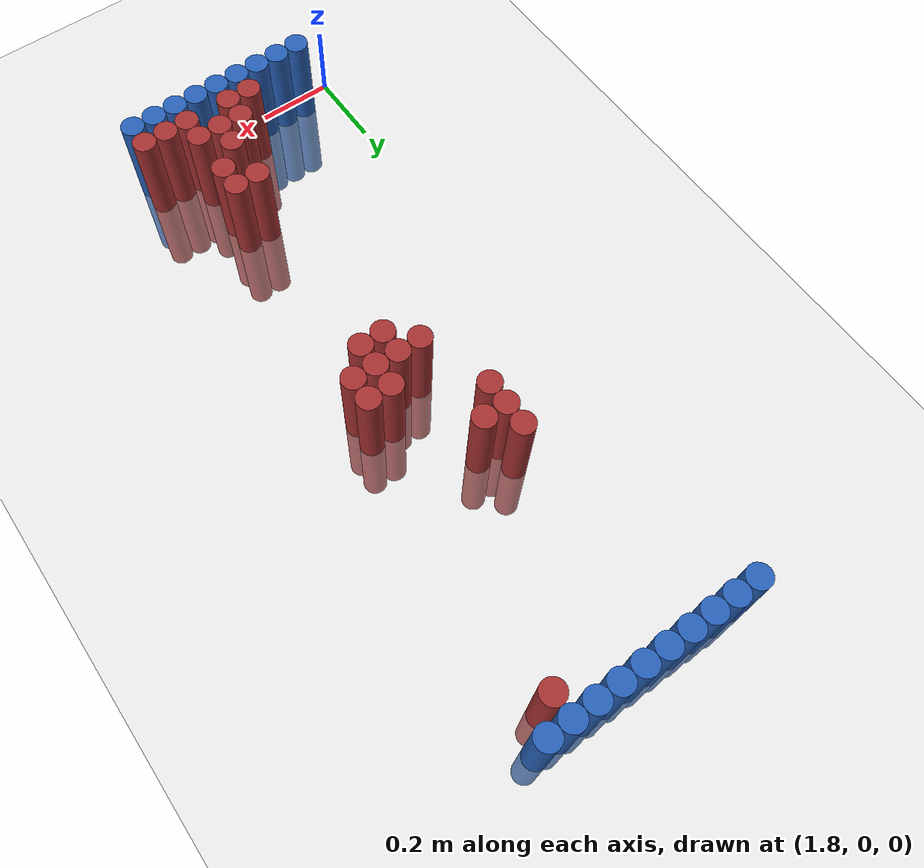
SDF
<sdf version="1.6">
 <world name="default">
  <model name="ground_plane">
   <static>1</static>
   <link name="link">
    <collision name="collision">
     <geometry><plane><normal>0 0 1</normal><size>100 100</size></plane></geometry>
     <surface><friction><ode><mu>100</mu><mu2>50</mu2></ode></friction></surface>
    </collision>
    <visual name="visual">
     <cast_shadows>0</cast_shadows>
     <geometry><plane><normal>0 0 1</normal><size>100 100</size></plane></geometry>
     <material>
      <script><uri>file://media/materials/scripts/gazebo.material</uri><name>Gazebo/Grey</name></script>
     </material>
    </visual>
   </link>
  </model>
  <model name="unit_cylinder_89">
   <static>1</static>
   <pose>1.890000 0.030000 0.000000 0.000000 0.000000 0.000000</pose>
   <link name="link">
    <inertial>
     <mass>1</mass>
     <inertia><ixx>0.145833</ixx><ixy>0</ixy><ixz>0</ixz><iyy>0.145833</iyy><iyz>0</iyz><izz>0.125</izz></inertia>
    </inertial>
    <collision name="collision">
     <geometry><cylinder><radius>0.030000</radius><length>0.5</length></cylinder></geometry>
    </collision>
    <visual name="visual">
     <geometry><cylinder><radius>0.030000</radius><length>0.5</length></cylinder></geometry>
     <material>
      <ambient>0.152000 0.379000 0.720000 1</ambient>
      <diffuse>0.152000 0.379000 0.720000 1</diffuse>
     </material>
     <material>
      <script><name>Gazebo/Grey</name><uri>file://media/materials/scripts/gazebo.material</uri></script>
     </material>
    </visual>
   </link>
  </model>
  <model name="unit_cylinder_90">
   <static>1</static>
   <pose>1.890000 1.770000 0.000000 0.000000 0.000000 0.000000</pose>
   <link name="link">
    <inertial>
     <mass>1</mass>
     <inertia><ixx>0.145833</ixx><ixy>0</ixy><ixz>0</ixz><iyy>0.145833</iyy><iyz>0</iyz><izz>0.125</izz></inertia>
    </inertial>
    <collision name="collision">
     <geometry><cylinder><radius>0.030000</radius><length>0.5</length></cylinder></geometry>
    </collision>
    <visual name="visual">
     <geometry><cylinder><radius>0.030000</radius><length>0.5</length></cylinder></geometry>
     <material>
      <ambient>0.152000 0.379000 0.720000 1</ambient>
      <diffuse>0.152000 0.379000 0.720000 1</diffuse>
     </material>
     <material>
      <script><name>Gazebo/Grey</name><uri>file://media/materials/scripts/gazebo.material</uri></script>
     </material>
    </visual>
   </link>
  </model>
  <model name="unit_cylinder_91">
   <static>1</static>
   <pose>1.950000 0.030000 0.000000 0.000000 0.000000 0.000000</pose>
   <link name="link">
    <inertial>
     <mass>1</mass>
     <inertia><ixx>0.145833</ixx><ixy>0</ixy><ixz>0</ixz><iyy>0.145833</iyy><iyz>0</iyz><izz>0.125</izz></inertia>
    </inertial>
    <collision name="collision">
     <geometry><cylinder><radius>0.030000</radius><length>0.5</length></cylinder></geometry>
    </collision>
    <visual name="visual">
     <geometry><cylinder><radius>0.030000</radius><length>0.5</length></cylinder></geometry>
     <material>
      <ambient>0.152000 0.379000 0.720000 1</ambient>
      <diffuse>0.152000 0.379000 0.720000 1</diffuse>
     </material>
     <material>
      <script><name>Gazebo/Grey</name><uri>file://media/materials/scripts/gazebo.material</uri></script>
     </material>
    </visual>
   </link>
  </model>
  <model name="unit_cylinder_92">
   <static>1</static>
   <pose>1.950000 1.770000 0.000000 0.000000 0.000000 0.000000</pose>
   <link name="link">
    <inertial>
     <mass>1</mass>
     <inertia><ixx>0.145833</ixx><ixy>0</ixy><ixz>0</ixz><iyy>0.145833</iyy><iyz>0</iyz><izz>0.125</izz></inertia>
    </inertial>
    <collision name="collision">
     <geometry><cylinder><radius>0.030000</radius><length>0.5</length></cylinder></geometry>
    </collision>
    <visual name="visual">
     <geometry><cylinder><radius>0.030000</radius><length>0.5</length></cylinder></geometry>
     <material>
      <ambient>0.152000 0.379000 0.720000 1</ambient>
      <diffuse>0.152000 0.379000 0.720000 1</diffuse>
     </material>
     <material>
      <script><name>Gazebo/Grey</name><uri>file://media/materials/scripts/gazebo.material</uri></script>
     </material>
    </visual>
   </link>
  </model>
  <model name="unit_cylinder_93">
   <static>1</static>
   <pose>2.010000 0.030000 0.000000 0.000000 0.000000 0.000000</pose>
   <link name="link">
    <inertial>
     <mass>1</mass>
     <inertia><ixx>0.145833</ixx><ixy>0</ixy><ixz>0</ixz><iyy>0.145833</iyy><iyz>0</iyz><izz>0.125</izz></inertia>
    </inertial>
    <collision name="collision">
     <geometry><cylinder><radius>0.030000</radius><length>0.5</length></cylinder></geometry>
    </collision>
    <visual name="visual">
     <geometry><cylinder><radius>0.030000</radius><length>0.5</length></cylinder></geometry>
     <material>
      <ambient>0.152000 0.379000 0.720000 1</ambient>
      <diffuse>0.152000 0.379000 0.720000 1</diffuse>
     </material>
     <material>
      <script><name>Gazebo/Grey</name><uri>file://media/materials/scripts/gazebo.material</uri></script>
     </material>
    </visual>
   </link>
  </model>
  <model name="unit_cylinder_94">
   <static>1</static>
   <pose>2.010000 1.770000 0.000000 0.000000 0.000000 0.000000</pose>
   <link name="link">
    <inertial>
     <mass>1</mass>
     <inertia><ixx>0.145833</ixx><ixy>0</ixy><ixz>0</ixz><iyy>0.145833</iyy><iyz>0</iyz><izz>0.125</izz></inertia>
    </inertial>
    <collision name="collision">
     <geometry><cylinder><radius>0.030000</radius><length>0.5</length></cylinder></geometry>
    </collision>
    <visual name="visual">
     <geometry><cylinder><radius>0.030000</radius><length>0.5</length></cylinder></geometry>
     <material>
      <ambient>0.152000 0.379000 0.720000 1</ambient>
      <diffuse>0.152000 0.379000 0.720000 1</diffuse>
     </material>
     <material>
      <script><name>Gazebo/Grey</name><uri>file://media/materials/scripts/gazebo.material</uri></script>
     </material>
    </visual>
   </link>
  </model>
  <model name="unit_cylinder_95">
   <static>1</static>
   <pose>2.070000 1.770000 0.000000 0.000000 0.000000 0.000000</pose>
   <link name="link">
    <inertial>
     <mass>1</mass>
     <inertia><ixx>0.145833</ixx><ixy>0</ixy><ixz>0</ixz><iyy>0.145833</iyy><iyz>0</iyz><izz>0.125</izz></inertia>
    </inertial>
    <collision name="collision">
     <geometry><cylinder><radius>0.030000</radius><length>0.5</length></cylinder></geometry>
    </collision>
    <visual name="visual">
     <geometry><cylinder><radius>0.030000</radius><length>0.5</length></cylinder></geometry>
     <material>
      <ambient>0.152000 0.379000 0.720000 1</ambient>
      <diffuse>0.152000 0.379000 0.720000 1</diffuse>
     </material>
     <material>
      <script><name>Gazebo/Grey</name><uri>file://media/materials/scripts/gazebo.material</uri></script>
     </material>
    </visual>
   </link>
  </model>
  <model name="unit_cylinder_96">
   <static>1</static>
   <pose>2.130000 1.770000 0.000000 0.000000 0.000000 0.000000</pose>
   <link name="link">
    <inertial>
     <mass>1</mass>
     <inertia><ixx>0.145833</ixx><ixy>0</ixy><ixz>0</ixz><iyy>0.145833</iyy><iyz>0</iyz><izz>0.125</izz></inertia>
    </inertial>
    <collision name="collision">
     <geometry><cylinder><radius>0.030000</radius><length>0.5</length></cylinder></geometry>
    </collision>
    <visual name="visual">
     <geometry><cylinder><radius>0.030000</radius><length>0.5</length></cylinder></geometry>
     <material>
      <ambient>0.152000 0.379000 0.720000 1</ambient>
      <diffuse>0.152000 0.379000 0.720000 1</diffuse>
     </material>
     <material>
      <script><name>Gazebo/Grey</name><uri>file://media/materials/scripts/gazebo.material</uri></script>
     </material>
    </visual>
   </link>
  </model>
  <model name="unit_cylinder_97">
   <static>1</static>
   <pose>2.190000 1.770000 0.000000 0.000000 0.000000 0.000000</pose>
   <link name="link">
    <inertial>
     <mass>1</mass>
     <inertia><ixx>0.145833</ixx><ixy>0</ixy><ixz>0</ixz><iyy>0.145833</iyy><iyz>0</iyz><izz>0.125</izz></inertia>
    </inertial>
    <collision name="collision">
     <geometry><cylinder><radius>0.030000</radius><length>0.5</length></cylinder></geometry>
    </collision>
    <visual name="visual">
     <geometry><cylinder><radius>0.030000</radius><length>0.5</length></cylinder></geometry>
     <material>
      <ambient>0.152000 0.379000 0.720000 1</ambient>
      <diffuse>0.152000 0.379000 0.720000 1</diffuse>
     </material>
     <material>
      <script><name>Gazebo/Grey</name><uri>file://media/materials/scripts/gazebo.material</uri></script>
     </material>
    </visual>
   </link>
  </model>
  <model name="unit_cylinder_98">
   <static>1</static>
   <pose>2.250000 1.770000 0.000000 0.000000 0.000000 0.000000</pose>
   <link name="link">
    <inertial>
     <mass>1</mass>
     <inertia><ixx>0.145833</ixx><ixy>0</ixy><ixz>0</ixz><iyy>0.145833</iyy><iyz>0</iyz><izz>0.125</izz></inertia>
    </inertial>
    <collision name="collision">
     <geometry><cylinder><radius>0.030000</radius><length>0.5</length></cylinder></geometry>
    </collision>
    <visual name="visual">
     <geometry><cylinder><radius>0.030000</radius><length>0.5</length></cylinder></geometry>
     <material>
      <ambient>0.152000 0.379000 0.720000 1</ambient>
      <diffuse>0.152000 0.379000 0.720000 1</diffuse>
     </material>
     <material>
      <script><name>Gazebo/Grey</name><uri>file://media/materials/scripts/gazebo.material</uri></script>
     </material>
    </visual>
   </link>
  </model>
  <model name="unit_cylinder_99">
   <static>1</static>
   <pose>2.310000 1.770000 0.000000 0.000000 0.000000 0.000000</pose>
   <link name="link">
    <inertial>
     <mass>1</mass>
     <inertia><ixx>0.145833</ixx><ixy>0</ixy><ixz>0</ixz><iyy>0.145833</iyy><iyz>0</iyz><izz>0.125</izz></inertia>
    </inertial>
    <collision name="collision">
     <geometry><cylinder><radius>0.030000</radius><length>0.5</length></cylinder></geometry>
    </collision>
    <visual name="visual">
     <geometry><cylinder><radius>0.030000</radius><length>0.5</length></cylinder></geometry>
     <material>
      <ambient>0.152000 0.379000 0.720000 1</ambient>
      <diffuse>0.152000 0.379000 0.720000 1</diffuse>
     </material>
     <material>
      <script><name>Gazebo/Grey</name><uri>file://media/materials/scripts/gazebo.material</uri></script>
     </material>
    </visual>
   </link>
  </model>
  <model name="unit_cylinder_100">
   <static>1</static>
   <pose>2.370000 1.770000 0.000000 0.000000 0.000000 0.000000</pose>
   <link name="link">
    <inertial>
     <mass>1</mass>
     <inertia><ixx>0.145833</ixx><ixy>0</ixy><ixz>0</ixz><iyy>0.145833</iyy><iyz>0</iyz><izz>0.125</izz></inertia>
    </inertial>
    <collision name="collision">
     <geometry><cylinder><radius>0.030000</radius><length>0.5</length></cylinder></geometry>
    </collision>
    <visual name="visual">
     <geometry><cylinder><radius>0.030000</radius><length>0.5</length></cylinder></geometry>
     <material>
      <ambient>0.152000 0.379000 0.720000 1</ambient>
      <diffuse>0.152000 0.379000 0.720000 1</diffuse>
     </material>
     <material>
      <script><name>Gazebo/Grey</name><uri>file://media/materials/scripts/gazebo.material</uri></script>
     </material>
    </visual>
   </link>
  </model>
  <model name="unit_cylinder_101">
   <static>1</static>
   <pose>2.430000 1.770000 0.000000 0.000000 0.000000 0.000000</pose>
   <link name="link">
    <inertial>
     <mass>1</mass>
     <inertia><ixx>0.145833</ixx><ixy>0</ixy><ixz>0</ixz><iyy>0.145833</iyy><iyz>0</iyz><izz>0.125</izz></inertia>
    </inertial>
    <collision name="collision">
     <geometry><cylinder><radius>0.030000</radius><length>0.5</length></cylinder></geometry>
    </collision>
    <visual name="visual">
     <geometry><cylinder><radius>0.030000</radius><length>0.5</length></cylinder></geometry>
     <material>
      <ambient>0.152000 0.379000 0.720000 1</ambient>
      <diffuse>0.152000 0.379000 0.720000 1</diffuse>
     </material>
     <material>
      <script><name>Gazebo/Grey</name><uri>file://media/materials/scripts/gazebo.material</uri></script>
     </material>
    </visual>
   </link>
  </model>
  <model name="unit_cylinder_125">
   <static>1</static>
   <pose>2.370000 1.710000 0.000000 0.000000 0.000000 0.000000</pose>
   <link name="link">
    <inertial>
     <mass>1</mass>
     <inertia><ixx>0.145833</ixx><ixy>0</ixy><ixz>0</ixz><iyy>0.145833</iyy><iyz>0</iyz><izz>0.125</izz></inertia>
    </inertial>
    <collision name="collision">
     <geometry><cylinder><radius>0.030000</radius><length>0.5</length></cylinder></geometry>
    </collision>
    <visual name="visual">
     <geometry><cylinder><radius>0.030000</radius><length>0.5</length></cylinder></geometry>
     <material>
      <ambient>0.648000 0.192000 0.192000 1</ambient>
      <diffuse>0.648000 0.192000 0.192000 1</diffuse>
     </material>
     <material>
      <script><name>Gazebo/Grey</name><uri>file://media/materials/scripts/gazebo.material</uri></script>
     </material>
    </visual>
   </link>
  </model>
  <model name="unit_cylinder_141">
   <static>1</static>
   <pose>2.070000 1.230000 0.000000 0.000000 0.000000 0.000000</pose>
   <link name="link">
    <inertial>
     <mass>1</mass>
     <inertia><ixx>0.145833</ixx><ixy>0</ixy><ixz>0</ixz><iyy>0.145833</iyy><iyz>0</iyz><izz>0.125</izz></inertia>
    </inertial>
    <collision name="collision">
     <geometry><cylinder><radius>0.030000</radius><length>0.5</length></cylinder></geometry>
    </collision>
    <visual name="visual">
     <geometry><cylinder><radius>0.030000</radius><length>0.5</length></cylinder></geometry>
     <material>
      <ambient>0.648000 0.192000 0.192000 1</ambient>
      <diffuse>0.648000 0.192000 0.192000 1</diffuse>
     </material>
     <material>
      <script><name>Gazebo/Grey</name><uri>file://media/materials/scripts/gazebo.material</uri></script>
     </material>
    </visual>
   </link>
  </model>
  <model name="unit_cylinder_142">
   <static>1</static>
   <pose>2.070000 1.170000 0.000000 0.000000 0.000000 0.000000</pose>
   <link name="link">
    <inertial>
     <mass>1</mass>
     <inertia><ixx>0.145833</ixx><ixy>0</ixy><ixz>0</ixz><iyy>0.145833</iyy><iyz>0</iyz><izz>0.125</izz></inertia>
    </inertial>
    <collision name="collision">
     <geometry><cylinder><radius>0.030000</radius><length>0.5</length></cylinder></geometry>
    </collision>
    <visual name="visual">
     <geometry><cylinder><radius>0.030000</radius><length>0.5</length></cylinder></geometry>
     <material>
      <ambient>0.648000 0.192000 0.192000 1</ambient>
      <diffuse>0.648000 0.192000 0.192000 1</diffuse>
     </material>
     <material>
      <script><name>Gazebo/Grey</name><uri>file://media/materials/scripts/gazebo.material</uri></script>
     </material>
    </visual>
   </link>
  </model>
  <model name="unit_cylinder_143">
   <static>1</static>
   <pose>2.130000 1.170000 0.000000 0.000000 0.000000 0.000000</pose>
   <link name="link">
    <inertial>
     <mass>1</mass>
     <inertia><ixx>0.145833</ixx><ixy>0</ixy><ixz>0</ixz><iyy>0.145833</iyy><iyz>0</iyz><izz>0.125</izz></inertia>
    </inertial>
    <collision name="collision">
     <geometry><cylinder><radius>0.030000</radius><length>0.5</length></cylinder></geometry>
    </collision>
    <visual name="visual">
     <geometry><cylinder><radius>0.030000</radius><length>0.5</length></cylinder></geometry>
     <material>
      <ambient>0.648000 0.192000 0.192000 1</ambient>
      <diffuse>0.648000 0.192000 0.192000 1</diffuse>
     </material>
     <material>
      <script><name>Gazebo/Grey</name><uri>file://media/materials/scripts/gazebo.material</uri></script>
     </material>
    </visual>
   </link>
  </model>
  <model name="unit_cylinder_147">
   <static>1</static>
   <pose>2.070000 1.110000 0.000000 0.000000 0.000000 0.000000</pose>
   <link name="link">
    <inertial>
     <mass>1</mass>
     <inertia><ixx>0.145833</ixx><ixy>0</ixy><ixz>0</ixz><iyy>0.145833</iyy><iyz>0</iyz><izz>0.125</izz></inertia>
    </inertial>
    <collision name="collision">
     <geometry><cylinder><radius>0.030000</radius><length>0.5</length></cylinder></geometry>
    </collision>
    <visual name="visual">
     <geometry><cylinder><radius>0.030000</radius><length>0.5</length></cylinder></geometry>
     <material>
      <ambient>0.648000 0.192000 0.192000 1</ambient>
      <diffuse>0.648000 0.192000 0.192000 1</diffuse>
     </material>
     <material>
      <script><name>Gazebo/Grey</name><uri>file://media/materials/scripts/gazebo.material</uri></script>
     </material>
    </visual>
   </link>
  </model>
  <model name="unit_cylinder_149">
   <static>1</static>
   <pose>2.250000 0.990000 0.000000 0.000000 0.000000 0.000000</pose>
   <link name="link">
    <inertial>
     <mass>1</mass>
     <inertia><ixx>0.145833</ixx><ixy>0</ixy><ixz>0</ixz><iyy>0.145833</iyy><iyz>0</iyz><izz>0.125</izz></inertia>
    </inertial>
    <collision name="collision">
     <geometry><cylinder><radius>0.030000</radius><length>0.5</length></cylinder></geometry>
    </collision>
    <visual name="visual">
     <geometry><cylinder><radius>0.030000</radius><length>0.5</length></cylinder></geometry>
     <material>
      <ambient>0.648000 0.192000 0.192000 1</ambient>
      <diffuse>0.648000 0.192000 0.192000 1</diffuse>
     </material>
     <material>
      <script><name>Gazebo/Grey</name><uri>file://media/materials/scripts/gazebo.material</uri></script>
     </material>
    </visual>
   </link>
  </model>
  <model name="unit_cylinder_150">
   <static>1</static>
   <pose>2.310000 0.990000 0.000000 0.000000 0.000000 0.000000</pose>
   <link name="link">
    <inertial>
     <mass>1</mass>
     <inertia><ixx>0.145833</ixx><ixy>0</ixy><ixz>0</ixz><iyy>0.145833</iyy><iyz>0</iyz><izz>0.125</izz></inertia>
    </inertial>
    <collision name="collision">
     <geometry><cylinder><radius>0.030000</radius><length>0.5</length></cylinder></geometry>
    </collision>
    <visual name="visual">
     <geometry><cylinder><radius>0.030000</radius><length>0.5</length></cylinder></geometry>
     <material>
      <ambient>0.648000 0.192000 0.192000 1</ambient>
      <diffuse>0.648000 0.192000 0.192000 1</diffuse>
     </material>
     <material>
      <script><name>Gazebo/Grey</name><uri>file://media/materials/scripts/gazebo.material</uri></script>
     </material>
    </visual>
   </link>
  </model>
  <model name="unit_cylinder_152">
   <static>1</static>
   <pose>2.130000 0.930000 0.000000 0.000000 0.000000 0.000000</pose>
   <link name="link">
    <inertial>
     <mass>1</mass>
     <inertia><ixx>0.145833</ixx><ixy>0</ixy><ixz>0</ixz><iyy>0.145833</iyy><iyz>0</iyz><izz>0.125</izz></inertia>
    </inertial>
    <collision name="collision">
     <geometry><cylinder><radius>0.030000</radius><length>0.5</length></cylinder></geometry>
    </collision>
    <visual name="visual">
     <geometry><cylinder><radius>0.030000</radius><length>0.5</length></cylinder></geometry>
     <material>
      <ambient>0.648000 0.192000 0.192000 1</ambient>
      <diffuse>0.648000 0.192000 0.192000 1</diffuse>
     </material>
     <material>
      <script><name>Gazebo/Grey</name><uri>file://media/materials/scripts/gazebo.material</uri></script>
     </material>
    </visual>
   </link>
  </model>
  <model name="unit_cylinder_153">
   <static>1</static>
   <pose>2.190000 0.930000 0.000000 0.000000 0.000000 0.000000</pose>
   <link name="link">
    <inertial>
     <mass>1</mass>
     <inertia><ixx>0.145833</ixx><ixy>0</ixy><ixz>0</ixz><iyy>0.145833</iyy><iyz>0</iyz><izz>0.125</izz></inertia>
    </inertial>
    <collision name="collision">
     <geometry><cylinder><radius>0.030000</radius><length>0.5</length></cylinder></geometry>
    </collision>
    <visual name="visual">
     <geometry><cylinder><radius>0.030000</radius><length>0.5</length></cylinder></geometry>
     <material>
      <ambient>0.648000 0.192000 0.192000 1</ambient>
      <diffuse>0.648000 0.192000 0.192000 1</diffuse>
     </material>
     <material>
      <script><name>Gazebo/Grey</name><uri>file://media/materials/scripts/gazebo.material</uri></script>
     </material>
    </visual>
   </link>
  </model>
  <model name="unit_cylinder_154">
   <static>1</static>
   <pose>2.250000 0.930000 0.000000 0.000000 0.000000 0.000000</pose>
   <link name="link">
    <inertial>
     <mass>1</mass>
     <inertia><ixx>0.145833</ixx><ixy>0</ixy><ixz>0</ixz><iyy>0.145833</iyy><iyz>0</iyz><izz>0.125</izz></inertia>
    </inertial>
    <collision name="collision">
     <geometry><cylinder><radius>0.030000</radius><length>0.5</length></cylinder></geometry>
    </collision>
    <visual name="visual">
     <geometry><cylinder><radius>0.030000</radius><length>0.5</length></cylinder></geometry>
     <material>
      <ambient>0.648000 0.192000 0.192000 1</ambient>
      <diffuse>0.648000 0.192000 0.192000 1</diffuse>
     </material>
     <material>
      <script><name>Gazebo/Grey</name><uri>file://media/materials/scripts/gazebo.material</uri></script>
     </material>
    </visual>
   </link>
  </model>
  <model name="unit_cylinder_155">
   <static>1</static>
   <pose>2.310000 0.930000 0.000000 0.000000 0.000000 0.000000</pose>
   <link name="link">
    <inertial>
     <mass>1</mass>
     <inertia><ixx>0.145833</ixx><ixy>0</ixy><ixz>0</ixz><iyy>0.145833</iyy><iyz>0</iyz><izz>0.125</izz></inertia>
    </inertial>
    <collision name="collision">
     <geometry><cylinder><radius>0.030000</radius><length>0.5</length></cylinder></geometry>
    </collision>
    <visual name="visual">
     <geometry><cylinder><radius>0.030000</radius><length>0.5</length></cylinder></geometry>
     <material>
      <ambient>0.648000 0.192000 0.192000 1</ambient>
      <diffuse>0.648000 0.192000 0.192000 1</diffuse>
     </material>
     <material>
      <script><name>Gazebo/Grey</name><uri>file://media/materials/scripts/gazebo.material</uri></script>
     </material>
    </visual>
   </link>
  </model>
  <model name="unit_cylinder_158">
   <static>1</static>
   <pose>2.190000 0.870000 0.000000 0.000000 0.000000 0.000000</pose>
   <link name="link">
    <inertial>
     <mass>1</mass>
     <inertia><ixx>0.145833</ixx><ixy>0</ixy><ixz>0</ixz><iyy>0.145833</iyy><iyz>0</iyz><izz>0.125</izz></inertia>
    </inertial>
    <collision name="collision">
     <geometry><cylinder><radius>0.030000</radius><length>0.5</length></cylinder></geometry>
    </collision>
    <visual name="visual">
     <geometry><cylinder><radius>0.030000</radius><length>0.5</length></cylinder></geometry>
     <material>
      <ambient>0.648000 0.192000 0.192000 1</ambient>
      <diffuse>0.648000 0.192000 0.192000 1</diffuse>
     </material>
     <material>
      <script><name>Gazebo/Grey</name><uri>file://media/materials/scripts/gazebo.material</uri></script>
     </material>
    </visual>
   </link>
  </model>
  <model name="unit_cylinder_159">
   <static>1</static>
   <pose>2.250000 0.870000 0.000000 0.000000 0.000000 0.000000</pose>
   <link name="link">
    <inertial>
     <mass>1</mass>
     <inertia><ixx>0.145833</ixx><ixy>0</ixy><ixz>0</ixz><iyy>0.145833</iyy><iyz>0</iyz><izz>0.125</izz></inertia>
    </inertial>
    <collision name="collision">
     <geometry><cylinder><radius>0.030000</radius><length>0.5</length></cylinder></geometry>
    </collision>
    <visual name="visual">
     <geometry><cylinder><radius>0.030000</radius><length>0.5</length></cylinder></geometry>
     <material>
      <ambient>0.648000 0.192000 0.192000 1</ambient>
      <diffuse>0.648000 0.192000 0.192000 1</diffuse>
     </material>
     <material>
      <script><name>Gazebo/Grey</name><uri>file://media/materials/scripts/gazebo.material</uri></script>
     </material>
    </visual>
   </link>
  </model>
  <model name="unit_cylinder_161">
   <static>1</static>
   <pose>2.190000 0.330000 0.000000 0.000000 0.000000 0.000000</pose>
   <link name="link">
    <inertial>
     <mass>1</mass>
     <inertia><ixx>0.145833</ixx><ixy>0</ixy><ixz>0</ixz><iyy>0.145833</iyy><iyz>0</iyz><izz>0.125</izz></inertia>
    </inertial>
    <collision name="collision">
     <geometry><cylinder><radius>0.030000</radius><length>0.5</length></cylinder></geometry>
    </collision>
    <visual name="visual">
     <geometry><cylinder><radius>0.030000</radius><length>0.5</length></cylinder></geometry>
     <material>
      <ambient>0.648000 0.192000 0.192000 1</ambient>
      <diffuse>0.648000 0.192000 0.192000 1</diffuse>
     </material>
     <material>
      <script><name>Gazebo/Grey</name><uri>file://media/materials/scripts/gazebo.material</uri></script>
     </material>
    </visual>
   </link>
  </model>
  <model name="unit_cylinder_162">
   <static>1</static>
   <pose>2.250000 0.330000 0.000000 0.000000 0.000000 0.000000</pose>
   <link name="link">
    <inertial>
     <mass>1</mass>
     <inertia><ixx>0.145833</ixx><ixy>0</ixy><ixz>0</ixz><iyy>0.145833</iyy><iyz>0</iyz><izz>0.125</izz></inertia>
    </inertial>
    <collision name="collision">
     <geometry><cylinder><radius>0.030000</radius><length>0.5</length></cylinder></geometry>
    </collision>
    <visual name="visual">
     <geometry><cylinder><radius>0.030000</radius><length>0.5</length></cylinder></geometry>
     <material>
      <ambient>0.648000 0.192000 0.192000 1</ambient>
      <diffuse>0.648000 0.192000 0.192000 1</diffuse>
     </material>
     <material>
      <script><name>Gazebo/Grey</name><uri>file://media/materials/scripts/gazebo.material</uri></script>
     </material>
    </visual>
   </link>
  </model>
  <model name="unit_cylinder_166">
   <static>1</static>
   <pose>2.250000 0.270000 0.000000 0.000000 0.000000 0.000000</pose>
   <link name="link">
    <inertial>
     <mass>1</mass>
     <inertia><ixx>0.145833</ixx><ixy>0</ixy><ixz>0</ixz><iyy>0.145833</iyy><iyz>0</iyz><izz>0.125</izz></inertia>
    </inertial>
    <collision name="collision">
     <geometry><cylinder><radius>0.030000</radius><length>0.5</length></cylinder></geometry>
    </collision>
    <visual name="visual">
     <geometry><cylinder><radius>0.030000</radius><length>0.5</length></cylinder></geometry>
     <material>
      <ambient>0.648000 0.192000 0.192000 1</ambient>
      <diffuse>0.648000 0.192000 0.192000 1</diffuse>
     </material>
     <material>
      <script><name>Gazebo/Grey</name><uri>file://media/materials/scripts/gazebo.material</uri></script>
     </material>
    </visual>
   </link>
  </model>
  <model name="unit_cylinder_168">
   <static>1</static>
   <pose>2.190000 0.210000 0.000000 0.000000 0.000000 0.000000</pose>
   <link name="link">
    <inertial>
     <mass>1</mass>
     <inertia><ixx>0.145833</ixx><ixy>0</ixy><ixz>0</ixz><iyy>0.145833</iyy><iyz>0</iyz><izz>0.125</izz></inertia>
    </inertial>
    <collision name="collision">
     <geometry><cylinder><radius>0.030000</radius><length>0.5</length></cylinder></geometry>
    </collision>
    <visual name="visual">
     <geometry><cylinder><radius>0.030000</radius><length>0.5</length></cylinder></geometry>
     <material>
      <ambient>0.648000 0.192000 0.192000 1</ambient>
      <diffuse>0.648000 0.192000 0.192000 1</diffuse>
     </material>
     <material>
      <script><name>Gazebo/Grey</name><uri>file://media/materials/scripts/gazebo.material</uri></script>
     </material>
    </visual>
   </link>
  </model>
  <model name="unit_cylinder_170">
   <static>1</static>
   <pose>2.130000 0.150000 0.000000 0.000000 0.000000 0.000000</pose>
   <link name="link">
    <inertial>
     <mass>1</mass>
     <inertia><ixx>0.145833</ixx><ixy>0</ixy><ixz>0</ixz><iyy>0.145833</iyy><iyz>0</iyz><izz>0.125</izz></inertia>
    </inertial>
    <collision name="collision">
     <geometry><cylinder><radius>0.030000</radius><length>0.5</length></cylinder></geometry>
    </collision>
    <visual name="visual">
     <geometry><cylinder><radius>0.030000</radius><length>0.5</length></cylinder></geometry>
     <material>
      <ambient>0.648000 0.192000 0.192000 1</ambient>
      <diffuse>0.648000 0.192000 0.192000 1</diffuse>
     </material>
     <material>
      <script><name>Gazebo/Grey</name><uri>file://media/materials/scripts/gazebo.material</uri></script>
     </material>
    </visual>
   </link>
  </model>
  <model name="unit_cylinder_171">
   <static>1</static>
   <pose>2.190000 0.150000 0.000000 0.000000 0.000000 0.000000</pose>
   <link name="link">
    <inertial>
     <mass>1</mass>
     <inertia><ixx>0.145833</ixx><ixy>0</ixy><ixz>0</ixz><iyy>0.145833</iyy><iyz>0</iyz><izz>0.125</izz></inertia>
    </inertial>
    <collision name="collision">
     <geometry><cylinder><radius>0.030000</radius><length>0.5</length></cylinder></geometry>
    </collision>
    <visual name="visual">
     <geometry><cylinder><radius>0.030000</radius><length>0.5</length></cylinder></geometry>
     <material>
      <ambient>0.648000 0.192000 0.192000 1</ambient>
      <diffuse>0.648000 0.192000 0.192000 1</diffuse>
     </material>
     <material>
      <script><name>Gazebo/Grey</name><uri>file://media/materials/scripts/gazebo.material</uri></script>
     </material>
    </visual>
   </link>
  </model>
  <model name="unit_cylinder_172">
   <static>1</static>
   <pose>2.250000 0.150000 0.000000 0.000000 0.000000 0.000000</pose>
   <link name="link">
    <inertial>
     <mass>1</mass>
     <inertia><ixx>0.145833</ixx><ixy>0</ixy><ixz>0</ixz><iyy>0.145833</iyy><iyz>0</iyz><izz>0.125</izz></inertia>
    </inertial>
    <collision name="collision">
     <geometry><cylinder><radius>0.030000</radius><length>0.5</length></cylinder></geometry>
    </collision>
    <visual name="visual">
     <geometry><cylinder><radius>0.030000</radius><length>0.5</length></cylinder></geometry>
     <material>
      <ambient>0.648000 0.192000 0.192000 1</ambient>
      <diffuse>0.648000 0.192000 0.192000 1</diffuse>
     </material>
     <material>
      <script><name>Gazebo/Grey</name><uri>file://media/materials/scripts/gazebo.material</uri></script>
     </material>
    </visual>
   </link>
  </model>
  <model name="unit_cylinder_177">
   <static>1</static>
   <pose>2.070000 0.090000 0.000000 0.000000 0.000000 0.000000</pose>
   <link name="link">
    <inertial>
     <mass>1</mass>
     <inertia><ixx>0.145833</ixx><ixy>0</ixy><ixz>0</ixz><iyy>0.145833</iyy><iyz>0</iyz><izz>0.125</izz></inertia>
    </inertial>
    <collision name="collision">
     <geometry><cylinder><radius>0.030000</radius><length>0.5</length></cylinder></geometry>
    </collision>
    <visual name="visual">
     <geometry><cylinder><radius>0.030000</radius><length>0.5</length></cylinder></geometry>
     <material>
      <ambient>0.648000 0.192000 0.192000 1</ambient>
      <diffuse>0.648000 0.192000 0.192000 1</diffuse>
     </material>
     <material>
      <script><name>Gazebo/Grey</name><uri>file://media/materials/scripts/gazebo.material</uri></script>
     </material>
    </visual>
   </link>
  </model>
  <model name="unit_cylinder_178">
   <static>1</static>
   <pose>2.130000 0.090000 0.000000 0.000000 0.000000 0.000000</pose>
   <link name="link">
    <inertial>
     <mass>1</mass>
     <inertia><ixx>0.145833</ixx><ixy>0</ixy><ixz>0</ixz><iyy>0.145833</iyy><iyz>0</iyz><izz>0.125</izz></inertia>
    </inertial>
    <collision name="collision">
     <geometry><cylinder><radius>0.030000</radius><length>0.5</length></cylinder></geometry>
    </collision>
    <visual name="visual">
     <geometry><cylinder><radius>0.030000</radius><length>0.5</length></cylinder></geometry>
     <material>
      <ambient>0.648000 0.192000 0.192000 1</ambient>
      <diffuse>0.648000 0.192000 0.192000 1</diffuse>
     </material>
     <material>
      <script><name>Gazebo/Grey</name><uri>file://media/materials/scripts/gazebo.material</uri></script>
     </material>
    </visual>
   </link>
  </model>
  <model name="unit_cylinder_179">
   <static>1</static>
   <pose>2.250000 0.090000 0.000000 0.000000 0.000000 0.000000</pose>
   <link name="link">
    <inertial>
     <mass>1</mass>
     <inertia><ixx>0.145833</ixx><ixy>0</ixy><ixz>0</ixz><iyy>0.145833</iyy><iyz>0</iyz><izz>0.125</izz></inertia>
    </inertial>
    <collision name="collision">
     <geometry><cylinder><radius>0.030000</radius><length>0.5</length></cylinder></geometry>
    </collision>
    <visual name="visual">
     <geometry><cylinder><radius>0.030000</radius><length>0.5</length></cylinder></geometry>
     <material>
      <ambient>0.648000 0.192000 0.192000 1</ambient>
      <diffuse>0.648000 0.192000 0.192000 1</diffuse>
     </material>
     <material>
      <script><name>Gazebo/Grey</name><uri>file://media/materials/scripts/gazebo.material</uri></script>
     </material>
    </visual>
   </link>
  </model>
  <model name="unit_cylinder_180">
   <static>1</static>
   <pose>2.310000 0.090000 0.000000 0.000000 0.000000 0.000000</pose>
   <link name="link">
    <inertial>
     <mass>1</mass>
     <inertia><ixx>0.145833</ixx><ixy>0</ixy><ixz>0</ixz><iyy>0.145833</iyy><iyz>0</iyz><izz>0.125</izz></inertia>
    </inertial>
    <collision name="collision">
     <geometry><cylinder><radius>0.030000</radius><length>0.5</length></cylinder></geometry>
    </collision>
    <visual name="visual">
     <geometry><cylinder><radius>0.030000</radius><length>0.5</length></cylinder></geometry>
     <material>
      <ambient>0.648000 0.192000 0.192000 1</ambient>
      <diffuse>0.648000 0.192000 0.192000 1</diffuse>
     </material>
     <material>
      <script><name>Gazebo/Grey</name><uri>file://media/materials/scripts/gazebo.material</uri></script>
     </material>
    </visual>
   </link>
  </model>
  <model name="unit_cylinder_181">
   <static>1</static>
   <pose>2.370000 0.090000 0.000000 0.000000 0.000000 0.000000</pose>
   <link name="link">
    <inertial>
     <mass>1</mass>
     <inertia><ixx>0.145833</ixx><ixy>0</ixy><ixz>0</ixz><iyy>0.145833</iyy><iyz>0</iyz><izz>0.125</izz></inertia>
    </inertial>
    <collision name="collision">
     <geometry><cylinder><radius>0.030000</radius><length>0.5</length></cylinder></geometry>
    </collision>
    <visual name="visual">
     <geometry><cylinder><radius>0.030000</radius><length>0.5</length></cylinder></geometry>
     <material>
      <ambient>0.648000 0.192000 0.192000 1</ambient>
      <diffuse>0.648000 0.192000 0.192000 1</diffuse>
     </material>
     <material>
      <script><name>Gazebo/Grey</name><uri>file://media/materials/scripts/gazebo.material</uri></script>
     </material>
    </visual>
   </link>
  </model>
  <model name="unit_cylinder_192">
   <static>1</static>
   <pose>2.070000 0.030000 0.000000 0.000000 0.000000 0.000000</pose>
   <link name="link">
    <inertial>
     <mass>1</mass>
     <inertia><ixx>0.145833</ixx><ixy>0</ixy><ixz>0</ixz><iyy>0.145833</iyy><iyz>0</iyz><izz>0.125</izz></inertia>
    </inertial>
    <collision name="collision">
     <geometry><cylinder><radius>0.030000</radius><length>0.5</length></cylinder></geometry>
    </collision>
    <visual name="visual">
     <geometry><cylinder><radius>0.030000</radius><length>0.5</length></cylinder></geometry>
     <material>
      <ambient>0.152000 0.379000 0.720000 1</ambient>
      <diffuse>0.152000 0.379000 0.720000 1</diffuse>
     </material>
     <material>
      <script><name>Gazebo/Grey</name><uri>file://media/materials/scripts/gazebo.material</uri></script>
     </material>
    </visual>
   </link>
  </model>
  <model name="unit_cylinder_193">
   <static>1</static>
   <pose>2.130000 0.030000 0.000000 0.000000 0.000000 0.000000</pose>
   <link name="link">
    <inertial>
     <mass>1</mass>
     <inertia><ixx>0.145833</ixx><ixy>0</ixy><ixz>0</ixz><iyy>0.145833</iyy><iyz>0</iyz><izz>0.125</izz></inertia>
    </inertial>
    <collision name="collision">
     <geometry><cylinder><radius>0.030000</radius><length>0.5</length></cylinder></geometry>
    </collision>
    <visual name="visual">
     <geometry><cylinder><radius>0.030000</radius><length>0.5</length></cylinder></geometry>
     <material>
      <ambient>0.152000 0.379000 0.720000 1</ambient>
      <diffuse>0.152000 0.379000 0.720000 1</diffuse>
     </material>
     <material>
      <script><name>Gazebo/Grey</name><uri>file://media/materials/scripts/gazebo.material</uri></script>
     </material>
    </visual>
   </link>
  </model>
  <model name="unit_cylinder_194">
   <static>1</static>
   <pose>2.190000 0.030000 0.000000 0.000000 0.000000 0.000000</pose>
   <link name="link">
    <inertial>
     <mass>1</mass>
     <inertia><ixx>0.145833</ixx><ixy>0</ixy><ixz>0</ixz><iyy>0.145833</iyy><iyz>0</iyz><izz>0.125</izz></inertia>
    </inertial>
    <collision name="collision">
     <geometry><cylinder><radius>0.030000</radius><length>0.5</length></cylinder></geometry>
    </collision>
    <visual name="visual">
     <geometry><cylinder><radius>0.030000</radius><length>0.5</length></cylinder></geometry>
     <material>
      <ambient>0.152000 0.379000 0.720000 1</ambient>
      <diffuse>0.152000 0.379000 0.720000 1</diffuse>
     </material>
     <material>
      <script><name>Gazebo/Grey</name><uri>file://media/materials/scripts/gazebo.material</uri></script>
     </material>
    </visual>
   </link>
  </model>
  <model name="unit_cylinder_195">
   <static>1</static>
   <pose>2.250000 0.030000 0.000000 0.000000 0.000000 0.000000</pose>
   <link name="link">
    <inertial>
     <mass>1</mass>
     <inertia><ixx>0.145833</ixx><ixy>0</ixy><ixz>0</ixz><iyy>0.145833</iyy><iyz>0</iyz><izz>0.125</izz></inertia>
    </inertial>
    <collision name="collision">
     <geometry><cylinder><radius>0.030000</radius><length>0.5</length></cylinder></geometry>
    </collision>
    <visual name="visual">
     <geometry><cylinder><radius>0.030000</radius><length>0.5</length></cylinder></geometry>
     <material>
      <ambient>0.152000 0.379000 0.720000 1</ambient>
      <diffuse>0.152000 0.379000 0.720000 1</diffuse>
     </material>
     <material>
      <script><name>Gazebo/Grey</name><uri>file://media/materials/scripts/gazebo.material</uri></script>
     </material>
    </visual>
   </link>
  </model>
  <model name="unit_cylinder_196">
   <static>1</static>
   <pose>2.310000 0.030000 0.000000 0.000000 0.000000 0.000000</pose>
   <link name="link">
    <inertial>
     <mass>1</mass>
     <inertia><ixx>0.145833</ixx><ixy>0</ixy><ixz>0</ixz><iyy>0.145833</iyy><iyz>0</iyz><izz>0.125</izz></inertia>
    </inertial>
    <collision name="collision">
     <geometry><cylinder><radius>0.030000</radius><length>0.5</length></cylinder></geometry>
    </collision>
    <visual name="visual">
     <geometry><cylinder><radius>0.030000</radius><length>0.5</length></cylinder></geometry>
     <material>
      <ambient>0.152000 0.379000 0.720000 1</ambient>
      <diffuse>0.152000 0.379000 0.720000 1</diffuse>
     </material>
     <material>
      <script><name>Gazebo/Grey</name><uri>file://media/materials/scripts/gazebo.material</uri></script>
     </material>
    </visual>
   </link>
  </model>
  <model name="unit_cylinder_197">
   <static>1</static>
   <pose>2.370000 0.030000 0.000000 0.000000 0.000000 0.000000</pose>
   <link name="link">
    <inertial>
     <mass>1</mass>
     <inertia><ixx>0.145833</ixx><ixy>0</ixy><ixz>0</ixz><iyy>0.145833</iyy><iyz>0</iyz><izz>0.125</izz></inertia>
    </inertial>
    <collision name="collision">
     <geometry><cylinder><radius>0.030000</radius><length>0.5</length></cylinder></geometry>
    </collision>
    <visual name="visual">
     <geometry><cylinder><radius>0.030000</radius><length>0.5</length></cylinder></geometry>
     <material>
      <ambient>0.152000 0.379000 0.720000 1</ambient>
      <diffuse>0.152000 0.379000 0.720000 1</diffuse>
     </material>
     <material>
      <script><name>Gazebo/Grey</name><uri>file://media/materials/scripts/gazebo.material</uri></script>
     </material>
    </visual>
   </link>
  </model>
 </world>
</sdf>
